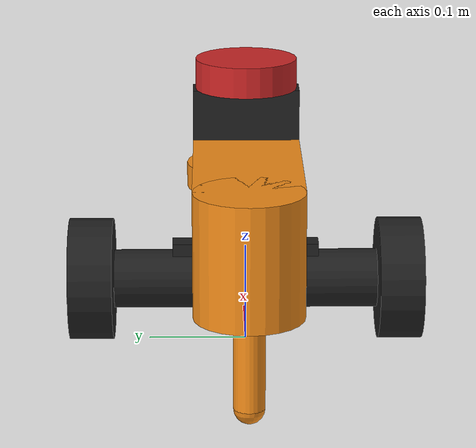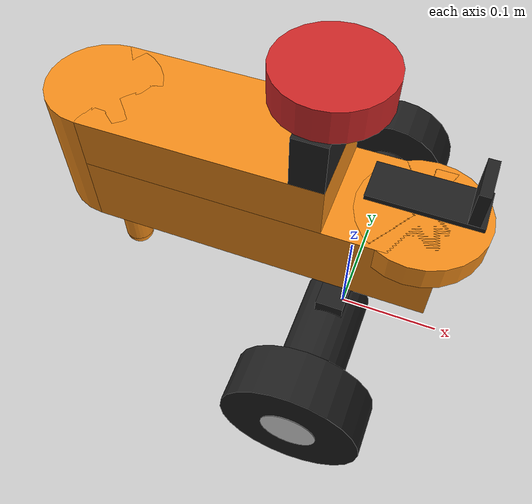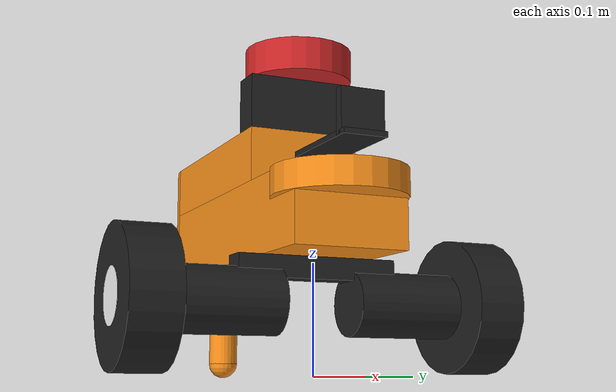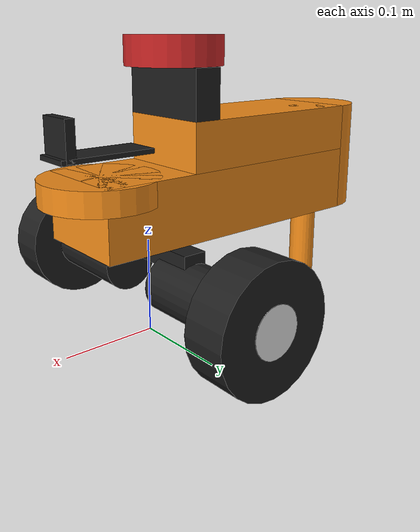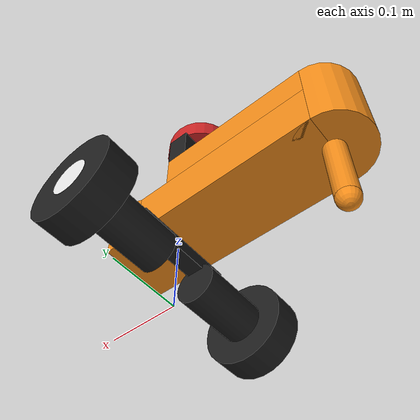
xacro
<?xml version="1.0"?>
<robot xmlns:xacro="http://www.ros.org/wiki/xacro" name="scout2">

    <!-- Material und Interial Matrix-->
    <xacro:include filename="material.xacro"/>

    <!-- load raw rover-->

    <xacro:include filename="rover.xacro"/>
    <xacro:include filename="joints.xacro"/>

    <!-- load cam and lidar -->
    <xacro:include filename="camera.xacro"/>

    <xacro:include filename="lidar.xacro"/>

    <xacro:include filename="ros2_control.xacro"/>

</robot>

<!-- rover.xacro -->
<robot xmlns:xacro="http://www.ros.org/wiki/xacro">
    <!-- LINKS -->

    <link name="base_footprint" />

    <link name="base_link">
        <visual>
            <origin xyz="0.0 0.0 0.01" rpy="0.0 0.0 0.0" />
            <geometry>
                <box size="0.025 0.15 0.02" />
            </geometry>
            <material name="black" />
        </visual>
        <collision>
            <origin xyz="0.0 0.0 0.01" rpy="0.0 0.0 0.0" />
            <geometry>
                <box size="0.025 0.15 0.02" />
            </geometry>
        </collision>
        <xacro:box_inertia m="0.2" l="0.025" w="0.15" h="0.02"
            xyz="0.0 0.0 0.01" rpy="0 0 0" />
    </link>
    <gazebo reference="base_link">
        <material>Gazebo/Black</material>
    </gazebo>

    <!--  WHEELS AND DEKO -->
    <xacro:macro name="wh_link" params="prefix y">
        <link name="wheel_holder_${prefix}">
            <visual>
                <origin xyz="0.0 ${y} 0.0" rpy="1.57 0.0 0.0" />
                <geometry>
                    <cylinder radius="0.03" length="0.1" />
                </geometry>
                <material name="black" />
            </visual>
            <collision>
                <origin xyz="0.0 ${y} 0.0" rpy="1.57 0.0 0.0" />
                <geometry>
                    <cylinder radius="0.03" length="0.1" />
                </geometry>
            </collision>
            <xacro:cylinder_inertia m="0.3" r="0.03" h="0.1"
                xyz="0 ${y} 0" rpy="0 0 0" />
        </link>
        <gazebo reference="wheel_holder_${prefix}">
            <material>Gazebo/Black</material>
        </gazebo>
    </xacro:macro>

    <xacro:wh_link prefix="right" y="-0.05" />
    <xacro:wh_link prefix="left" y="0.05" />

    <xacro:macro name="wheel_link" params="prefix y">
        <link name="wheel_${prefix}">
            <visual>
                <origin xyz="0.0 ${y} 0.0" rpy="1.57 0.0 0.0" />
                <geometry>
                    <cylinder radius="0.0625" length="0.045" />
                </geometry>
                <material name="black" />
            </visual>
            <collision>
                <origin xyz="0.0 ${y} 0.0" rpy="1.57 0.0 0.0" />
                <geometry>
                    <cylinder radius="0.0625" length="0.045" />
                </geometry>
            </collision>
            <xacro:cylinder_inertia m="0.3" r="0.0625" h="0.045"
                xyz="0 ${y} 0" rpy="0 0 0" />
        </link>
        <gazebo reference="wheel_${prefix}">
            <material>Gazebo/Black</material>
            <mu1 value="0.001" />
            <mu2 value="0.001" />
        </gazebo>
    </xacro:macro>

    <xacro:wheel_link prefix="right" y="-0.0225" />
    <xacro:wheel_link prefix="left" y="0.0225" />

    <xacro:macro name="wheel_deko" params="prefix ">
        <link name="wheel_deko_${prefix}">
            <visual>
                <origin xyz="0.0 0.0 0.0" rpy="1.57 0.0 0.0" />
                <geometry>
                    <cylinder radius="0.025" length="0.001" />
                </geometry>
                <material name="white" />
            </visual>
            <collision>
                <origin xyz="0.0 0.0 0.0" rpy="1.57 0.0 0.0" />
                <geometry>
                    <cylinder radius="0.025" length="0.001" />
                </geometry>
            </collision>
            <xacro:cylinder_inertia m="0.01" r="0.025" h="0.001"
                xyz="0 0 0" rpy="1.57 0.0 0.0" />
        </link>
        <gazebo reference="wheel_deko_${prefix}">
            <material>Gazebo/White</material>
        </gazebo>
    </xacro:macro>

    <xacro:wheel_deko prefix="right" />
    <xacro:wheel_deko prefix="left" />

    <!-- CHASSIS AUFBAU -->

    <link name="chassis_main">
        <visual>
            <origin xyz="0.0 0.0 0.035" rpy="0.0 0.0 0.0" />
            <geometry>
                <box size="0.32 0.105 0.07" />
            </geometry>
            <material name="orange" />
        </visual>
        <collision>
            <origin xyz="0.0 0.0 0.035" rpy="0.0 0.0 0.0" />
            <geometry>
                <box size="0.32 0.105 0.07" />
            </geometry>
        </collision>
        <xacro:box_inertia m="2.0" l="0.32" w="0.105" h="0.07"
            xyz="0.0 0.0 0.035" rpy="0 0 0" />
    </link>
    <gazebo reference="chassis_main">
        <material>Gazebo/Orange</material>
    </gazebo>

    <link name="chassis_main_top">
        <visual>
            <origin xyz="0.0 0.0 0.025" rpy="0.0 0.0 0.0" />
            <geometry>
                <box size="0.22 0.105 0.05" />
            </geometry>
            <material name="orange" />
        </visual>
        <collision>
            <origin xyz="0.0 0.0 0.025" rpy="0.0 0.0 0.0" />
            <geometry>
                <box size="0.22 0.105 0.05" />
            </geometry>
        </collision>
        <xacro:box_inertia m="1.0" l="0.22" w="0.105" h="0.05"
            xyz="0.0 0.0 0.025" rpy="0 0 0" />
    </link>
    <gazebo reference="chassis_main_top">
        <material>Gazebo/Orange</material>
    </gazebo>

    <link name="chassis_tail_cylinder">
        <visual>
            <origin xyz="0.0 0.0 0.06" rpy="0.0 0.0 0.0" />
            <geometry>
                <cylinder radius="0.0525" length="0.12" />
            </geometry>
            <material name="orange" />
        </visual>
        <collision>
            <origin xyz="0.0 0.0 0.06" rpy="0.0 0.0 0.0" />
            <geometry>
                <cylinder radius="0.0525" length="0.12" />
            </geometry>
        </collision>
        <xacro:cylinder_inertia m="0.4" r="0.0525" h="0.12"
            xyz="0.0 0.0 0.06" rpy="0 0 0" />
    </link>
    <gazebo reference="chassis_tail_cylinder">
        <material>Gazebo/Orange</material>
    </gazebo>

    <link name="chassis_front_cylinder">
        <visual>
            <origin xyz="0.0 0.0 -0.0125" rpy="0.0 0.0 0.0" />
            <geometry>
                <cylinder radius="0.06" length="0.025" />
            </geometry>
            <material name="orange" />
        </visual>
        <collision>
            <origin xyz="0.0 0.0 -0.0125" rpy="0.0 0.0 0.0" />
            <geometry>
                <cylinder radius="0.06" length="0.025" />
            </geometry>
        </collision>
        <xacro:cylinder_inertia m="0.2" r="0.06" h="0.025"
            xyz="0.0 0.0 -0.0125" rpy="0 0 0" />
    </link>
    <gazebo reference="chassis_front_cylinder">
        <material>Gazebo/Orange</material>
    </gazebo>

    <link name="chassis_casterWheel_cylinder">
        <visual>
            <origin xyz="0.0 0.0 -0.045" rpy="0.0 0.0 0.0" />
            <geometry>
                <cylinder radius="0.015" length="0.09" />
            </geometry>
            <material name="orange" />
        </visual>
        <collision>
            <origin xyz="0.0 0.0 -0.045" rpy="0.0 0.0 0.0" />
            <geometry>
                <cylinder radius="0.015" length="0.09" />
            </geometry>
        </collision>
        <xacro:cylinder_inertia m="0.3" r="0.015" h="0.09"
            xyz="0.0 0.0 -0.045" rpy="0 0 0" />
    </link>
    <gazebo reference="chassis_casterWheel_cylinder">
        <material>Gazebo/Orange</material>
    </gazebo>

    <link name="caster_wheel">
        <visual>
            <origin xyz="0 0 0" rpy="0.0 0.0 0.0" />
            <geometry>
                <sphere radius="0.015" />
            </geometry>
            <material name="orange" />
        </visual>
        <collision>
            <origin xyz="0 0 0" rpy="0.0 0.0 0.0" />
            <geometry>
                <sphere radius="0.015" />
            </geometry>
        </collision>
        <xacro:sphere_inertia m="0.05" r="0.015"
            xyz="0 0 0" rpy="0 0 0" />
    </link>
    <gazebo reference="caster_wheel">
        <material>Gazebo/Black</material>
        <mu1 value="0.001" />
        <mu2 value="0.001" />
    </gazebo>
</robot>

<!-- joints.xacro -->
<robot xmlns:xacro="http://www.ros.org/wiki/xacro">

    <!-- Joints_Fixed -->

    <joint name="base_footprint" type="fixed">
        <parent link="base_footprint" />
        <child link="base_link" />
        <origin xyz="0.0 0.0 0.085" rpy="0.0 0.0 0.0" />
    </joint>

    <!-- Wheels-->

    <joint name="chassi_1" type="fixed">
        <parent link="base_link" />
        <child link="wheel_holder_right" />
        <origin xyz="0.0 -0.035 -0.02" rpy="0.0 0.0 0.0" />
    </joint>

    <joint name="chassi_2" type="fixed">
        <parent link="base_link" />
        <child link="wheel_holder_left" />
        <origin xyz="0.0 0.035 -0.02" rpy="0.0 0.0 0.0" />
    </joint>

    <joint name="deko_1" type="fixed">
        <parent link="wheel_right" />
        <child link="wheel_deko_right" />
        <origin xyz="0.0 -0.045 0" rpy="0.0 0.0 0.0" />
    </joint>

    <joint name="deko_2" type="fixed">
        <parent link="wheel_left" />
        <child link="wheel_deko_left" />
        <origin xyz="0.0 0.045 0" rpy="0.0 0.0 0.0" />
    </joint>

    <!-- Chassi-->

    <joint name="chassi_base" type="fixed">
        <parent link="base_link" />
        <child link="chassis_main" />
        <origin xyz="-0.08 0.0 0.02" rpy="0.0 0.0 0.0" />
    </joint>

    <joint name="chassi_base_top" type="fixed">
        <parent link="chassis_main" />
        <child link="chassis_main_top" />
        <origin xyz="-0.05 0.0 0.07" rpy="0.0 0.0 0.0" />
    </joint>

    <joint name="chassi_base_cylinder" type="fixed">
        <parent link="chassis_main" />
        <child link="chassis_tail_cylinder" />
        <origin xyz="-0.16 0 0" rpy="0.0 0.0 0.0" />
    </joint>

    <joint name="chassi_front_cylinder" type="fixed">
        <parent link="chassis_main" />
        <child link="chassis_front_cylinder" />
        <origin xyz="0.135 0 0.07" rpy="0.0 0.0 0.0" />
    </joint>

    <joint name="chassi_casterWheel_cylinder" type="fixed">
        <parent link="chassis_tail_cylinder" />
        <child link="chassis_casterWheel_cylinder" />
        <origin xyz="0 0 0" rpy="0.0 0.0 0.0" />
    </joint>

    <joint name="casterWheel" type="fixed">
        <parent link="chassis_casterWheel_cylinder" />
        <child link="caster_wheel" />
        <origin xyz="0 0 -0.09" rpy="0.0 0.0 0.0" />
    </joint>

    <!-- Moving Joints -->

    <joint name="joint_1" type="continuous">
        <parent link="base_link" />
        <child link="wheel_right" />
        <axis xyz="0 1 0" />
        <origin xyz="0 -0.136 -0.02" rpy="0 0 0" />
    </joint>

    <joint name="joint_2" type="continuous">
        <parent link="base_link" />
        <child link="wheel_left" />
        <axis xyz="0 1 0" />
        <origin xyz="0 0.136 -0.02" rpy="0 0 0" />
    </joint>

</robot>

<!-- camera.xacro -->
<robot xmlns:xacro="http://www.ros.org/wiki/xacro">

     <!-- Camera -->

     <link name="camholder_1">
        <visual>
            <origin xyz="0.0 0.0 0.0015" rpy="0.0 0.0 0.0"/>
            <geometry>
                <box size="0.1 0.04 0.005"/>
            </geometry>
            <material name="black"/>
        </visual>
        <collision>
            <origin xyz="0.0 0.0 0.0015" rpy="0.0 0.0 0.0"/>
            <geometry>
                <box size="0.1 0.04 0.005"/>
            </geometry>
        </collision>
        <xacro:box_inertia m="0.01" l="0.1" w="0.04" h="0.005"
                           xyz="0.0 0.0 0.0015" rpy="0 0 0"/>
    </link>
    <gazebo reference="camholder_1">
        <material>Gazebo/Black</material>
    </gazebo>

    <link name="camholder_2">
        <visual>
            <origin xyz="0.0 0.0 0.02" rpy="0.0 0.0 0.0"/>
            <geometry>
                <box size="0.01 0.04 0.04"/>
            </geometry>
            <material name="black"/>
        </visual>
        <collision>
            <origin xyz="0.0 0.0 0.02" rpy="0.0 0.0 0.0"/>
            <geometry>
                <box size="0.01 0.04 0.04"/>
            </geometry>
        </collision>
        <xacro:box_inertia m="0.01" l="0.01" w="0.04" h="0.04"
                           xyz="0.0 0.0 0.02" rpy="0 0 0"/>
    </link>
    <gazebo reference="camholder_2">
        <material>Gazebo/Black</material>
        <sensor name="camera" type="camera">
            <pose> 0 0 0 0 0 0 </pose>
            <visualize>true</visualize>
            <update_rate>10</update_rate>
            <camera>
                <horizontal_fov>1.089</horizontal_fov>
                <image>
                    <format>R8G8B8</format>
                    <width>640</width>
                    <height>480</height>
                </image>
                <clip>
                    <near>0.05</near>
                    <far>8.0</far>
                </clip>
            </camera>
            <plugin name="camera_controller" filename="libgazebo_ros_camera.so">
                <frame_name>scout_cam</frame_name>
            </plugin>
        </sensor>
    </gazebo>

    <!-- Joint now Fixed but later Moving -->

    <joint name="move_cam_joint" type="fixed">
        <parent link="chassis_front_cylinder"/>
        <child link="camholder_1"/>
        <origin xyz="0.0 0.0 0.02" rpy="0.0 0.0 0.0"/>
    </joint>

    <joint name="camholder_main" type="fixed">
        <parent link="camholder_1"/>
        <child link="camholder_2"/>
        <origin xyz="0.04 0.0 0.0" rpy="0.0 0.0 0.0"/>
    </joint>

    <!-- Braucht noch virtuellen link für die camera und gazebo plugins-->

</robot>

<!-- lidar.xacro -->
<robot xmlns:xacro="http://www.ros.org/wiki/xacro">

    <!-- LIDAR -->

    <link name="chassis_lidar_block">
        <visual>
            <origin xyz="0.0 0.0 0.025" rpy="0.0 0.0 0.0" />
            <geometry>
                <box size="0.03 0.105 0.05" />
            </geometry>
            <material name="black" />
        </visual>
        <collision>
            <origin xyz="0.0 0.0 0.025" rpy="0.0 0.0 0.0" />
            <geometry>
                <box size="0.03 0.105 0.05" />
            </geometry>
        </collision>
        <xacro:box_inertia m="0.03" l="0.03" w="0.105" h="0.05"
            xyz="0.0 0.0 0.025" rpy="0 0 0" />
    </link>
    <gazebo reference="chassis_lidar_block">
        <material>Gazebo/Black</material>
    </gazebo>

    <link name="lidar">
        <visual>
            <origin xyz="0.0 0.0 0.015" rpy="0.0 0.0 0.0" />
            <geometry>
                <cylinder radius="0.05" length="0.03" />
            </geometry>
            <material name="red" />
        </visual>
        <collision>
            <origin xyz="0.0 0.0 0.015" rpy="0.0 0.0 0.0" />
            <geometry>
                <cylinder radius="0.05" length="0.03" />
            </geometry>
        </collision>
        <xacro:cylinder_inertia m="0.2" r="0.05" h="0.03"
                           xyz="0.0 0.0 0.015" rpy="0 0 0"/>
    </link>

    <gazebo reference="lidar">
        <material>Gazebo/Red</material>
        <sensor name="laser" type="ray">
            <pose> 0 0 0 0 0 0 </pose>
            <visualize>true</visualize>
            <update_rate>10</update_rate>
            <ray>
                <scan>
                    <horizontal>
                        <samples>360</samples>
                        <resolution>1</resolution>
                        <min_angle>0.00</min_angle>
                        <max_angle>3.14</max_angle>
                    </horizontal>
                </scan>
                <range>
                    <min>0.3</min>
                    <max>6</max>
                </range>
            </ray>
            <plugin name="laser_controller" filename="libgazebo_ros_ray_sensor.so">
                <ros>
                    <argument>--ros-args --remap ~/out:=scan</argument> <!-- - -ros-args - -remap ~/out:=scan -->
                </ros>
                <output_type>sensor_msgs/LaserScan</output_type>
                <frame_name>lidar</frame_name>
            </plugin>
        </sensor>
    </gazebo>

    <joint name="chassis_lidar" type="fixed">
        <parent link="chassis_main" />
        <child link="chassis_lidar_block" />
        <origin xyz="0.045 0.0 0.12" rpy="0.0 0.0 0.0" />
    </joint>

    <joint name="mount_lidar" type="fixed">
        <parent link="chassis_lidar_block" />
        <child link="lidar" />
        <origin xyz="0.0 0.0 0.05" rpy="0.0 0.0 ${-pi/2}" />
    </joint>

</robot>
